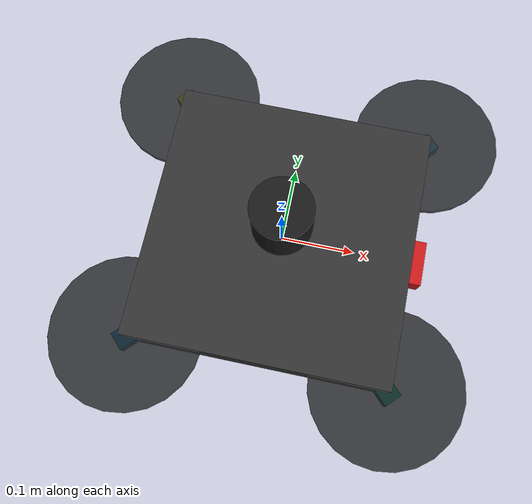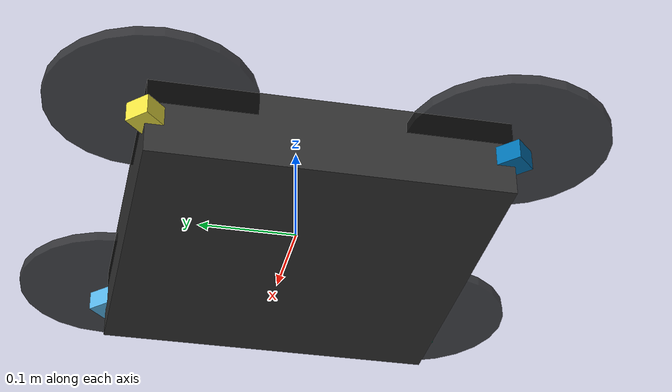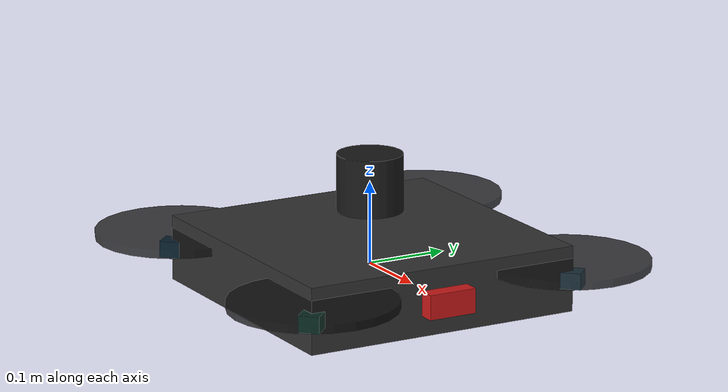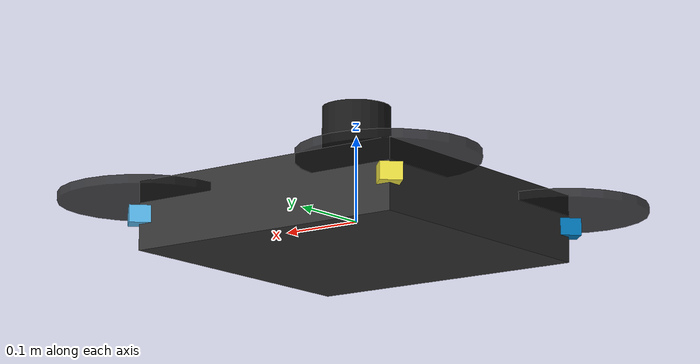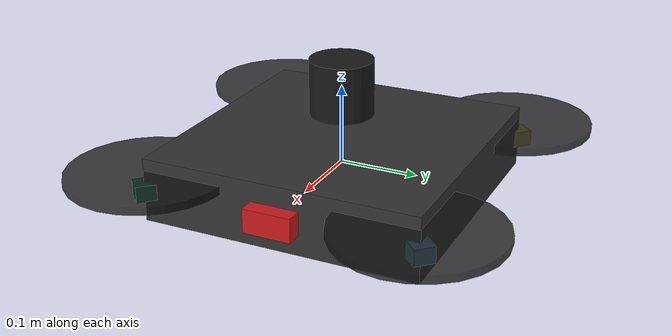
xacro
<?xml version="1.0"?>
<robot name="lidar_drone" xmlns:xacro="http://www.ros.org/wiki/xacro">

  <!-- ========== BASE BODY ========== -->
  <link name="base_link">
    <visual>
      <geometry><box size="0.35 0.35 0.08"/></geometry>
      <material name="dark_grey"><color rgba="0.2 0.2 0.2 1"/></material>
    </visual>
    <collision>
      <geometry><box size="0.35 0.35 0.08"/></geometry>
    </collision>
    <inertial>
      <mass value="1.2"/>
      <inertia ixx="0.015" iyy="0.015" izz="0.025" ixy="0" ixz="0" iyz="0"/>
    </inertial>
  </link>

  <!-- ========== ARMS ========== -->
  <link name="arm_fl">
    <visual><geometry><box size="0.18 0.025 0.02"/></geometry></visual>
    <inertial><mass value="0.05"/>
      <inertia ixx="0.0001" iyy="0.0001" izz="0.0001" ixy="0" ixz="0" iyz="0"/>
    </inertial>
  </link>
  <joint name="arm_fl_joint" type="fixed">
    <parent link="base_link"/><child link="arm_fl"/>
    <origin xyz="0.12 0.12 0.0" rpy="0 0 0.785"/>
  </joint>

  <link name="arm_fr">
    <visual><geometry><box size="0.18 0.025 0.02"/></geometry></visual>
    <inertial><mass value="0.05"/>
      <inertia ixx="0.0001" iyy="0.0001" izz="0.0001" ixy="0" ixz="0" iyz="0"/>
    </inertial>
  </link>
  <joint name="arm_fr_joint" type="fixed">
    <parent link="base_link"/><child link="arm_fr"/>
    <origin xyz="0.12 -0.12 0.0" rpy="0 0 -0.785"/>
  </joint>

  <link name="arm_rl">
    <visual><geometry><box size="0.18 0.025 0.02"/></geometry></visual>
    <inertial><mass value="0.05"/>
      <inertia ixx="0.0001" iyy="0.0001" izz="0.0001" ixy="0" ixz="0" iyz="0"/>
    </inertial>
  </link>
  <joint name="arm_rl_joint" type="fixed">
    <parent link="base_link"/><child link="arm_rl"/>
    <origin xyz="-0.12 0.12 0.0" rpy="0 0 -0.785"/>
  </joint>

  <link name="arm_rr">
    <visual><geometry><box size="0.18 0.025 0.02"/></geometry></visual>
    <inertial><mass value="0.05"/>
      <inertia ixx="0.0001" iyy="0.0001" izz="0.0001" ixy="0" ixz="0" iyz="0"/>
    </inertial>
  </link>
  <joint name="arm_rr_joint" type="fixed">
    <parent link="base_link"/><child link="arm_rr"/>
    <origin xyz="-0.12 -0.12 0.0" rpy="0 0 0.785"/>
  </joint>

  <!-- ========== ROTORS ========== -->
  <link name="rotor_fl">
    <visual><geometry><cylinder radius="0.1" length="0.01"/></geometry>
      <material name="black"><color rgba="0.1 0.1 0.1 0.8"/></material>
    </visual>
    <inertial><mass value="0.025"/>
      <inertia ixx="0.0001" iyy="0.0001" izz="0.0001" ixy="0" ixz="0" iyz="0"/>
    </inertial>
  </link>
  <joint name="rotor_fl_joint" type="fixed">
    <parent link="base_link"/><child link="rotor_fl"/>
    <origin xyz="0.17 0.17 0.02" rpy="0 0 0"/>
  </joint>

  <link name="rotor_fr">
    <visual><geometry><cylinder radius="0.1" length="0.01"/></geometry>
      <material name="black"><color rgba="0.1 0.1 0.1 0.8"/></material>
    </visual>
    <inertial><mass value="0.025"/>
      <inertia ixx="0.0001" iyy="0.0001" izz="0.0001" ixy="0" ixz="0" iyz="0"/>
    </inertial>
  </link>
  <joint name="rotor_fr_joint" type="fixed">
    <parent link="base_link"/><child link="rotor_fr"/>
    <origin xyz="0.17 -0.17 0.02" rpy="0 0 0"/>
  </joint>

  <link name="rotor_rl">
    <visual><geometry><cylinder radius="0.1" length="0.01"/></geometry>
      <material name="black"><color rgba="0.1 0.1 0.1 0.8"/></material>
    </visual>
    <inertial><mass value="0.025"/>
      <inertia ixx="0.0001" iyy="0.0001" izz="0.0001" ixy="0" ixz="0" iyz="0"/>
    </inertial>
  </link>
  <joint name="rotor_rl_joint" type="fixed">
    <parent link="base_link"/><child link="rotor_rl"/>
    <origin xyz="-0.17 0.17 0.02" rpy="0 0 0"/>
  </joint>

  <link name="rotor_rr">
    <visual><geometry><cylinder radius="0.1" length="0.01"/></geometry>
      <material name="black"><color rgba="0.1 0.1 0.1 0.8"/></material>
    </visual>
    <inertial><mass value="0.025"/>
      <inertia ixx="0.0001" iyy="0.0001" izz="0.0001" ixy="0" ixz="0" iyz="0"/>
    </inertial>
  </link>
  <joint name="rotor_rr_joint" type="fixed">
    <parent link="base_link"/><child link="rotor_rr"/>
    <origin xyz="-0.17 -0.17 0.02" rpy="0 0 0"/>
  </joint>

  <!-- ========== VELODYNE VLP-16 ========== -->
  <link name="velodyne_link">
    <visual>
      <geometry><cylinder radius="0.04" length="0.07"/></geometry>
      <material name="black"><color rgba="0.1 0.1 0.1 1"/></material>
    </visual>
    <collision>
      <geometry><cylinder radius="0.04" length="0.07"/></geometry>
    </collision>
    <inertial><mass value="0.08"/>
      <inertia ixx="0.0001" iyy="0.0001" izz="0.0001" ixy="0" ixz="0" iyz="0"/>
    </inertial>
  </link>
  <joint name="velodyne_joint" type="fixed">
    <parent link="base_link"/><child link="velodyne_link"/>
    <origin xyz="0.0 0.0 0.1" rpy="0 0 0"/>
  </joint>

  <!-- ========== FRONT CAMERA ========== -->
  <link name="front_camera_link">
    <visual>
      <geometry><box size="0.03 0.06 0.03"/></geometry>
      <material name="red"><color rgba="0.8 0.1 0.1 1"/></material>
    </visual>
    <inertial><mass value="0.02"/>
      <inertia ixx="0.0001" iyy="0.0001" izz="0.0001" ixy="0" ixz="0" iyz="0"/>
    </inertial>
  </link>
  <joint name="front_camera_joint" type="fixed">
    <parent link="base_link"/><child link="front_camera_link"/>
    <origin xyz="0.18 0.0 0.0" rpy="0 0 0"/>
  </joint>

  <!-- ========== GAZEBO: Flight Plugin ========== -->
  <gazebo>
    <plugin name="lidar_drone_plugin" filename="libgazebo_ros_planar_move.so">
      <ros>
        <namespace>/lidar_drone</namespace>
        <remapping>cmd_vel:=cmd_vel</remapping>
        <remapping>odom:=odom</remapping>
      </ros>
      <publish_rate>10</publish_rate>
    </plugin>
  </gazebo>

  <!-- ========== GAZEBO: Velodyne VLP-16 ========== -->
  <gazebo reference="velodyne_link">
    <sensor name="velodyne" type="ray">
      <always_on>true</always_on>
      <visualize>false</visualize>
      <update_rate>10</update_rate>
      <ray>
        <scan>
          <horizontal>
            <samples>360</samples>
            <resolution>1</resolution>
            <min_angle>-3.14159</min_angle>
            <max_angle>3.14159</max_angle>
          </horizontal>
          <vertical>
            <samples>16</samples>
            <resolution>1</resolution>
            <min_angle>-0.2618</min_angle>
            <max_angle>0.2618</max_angle>
          </vertical>
        </scan>
        <range>
          <min>0.1</min>
          <max>100.0</max>
          <resolution>0.01</resolution>
        </range>
        <noise>
          <type>gaussian</type>
          <mean>0.0</mean>
          <stddev>0.01</stddev>
        </noise>
      </ray>
      <plugin name="velodyne_plugin" filename="libgazebo_ros_ray_sensor.so">
        <ros>
          <namespace>/lidar_drone</namespace>
          <remapping>~/out:=lidar/points</remapping>
        </ros>
        <output_type>sensor_msgs/PointCloud2</output_type>
        <frame_name>velodyne_link</frame_name>
      </plugin>
    </sensor>
  </gazebo>

  <!-- ========== GAZEBO: Front Camera ========== -->
  <gazebo reference="front_camera_link">
    <sensor name="front_camera" type="camera">
      <always_on>true</always_on>
      <visualize>true</visualize>
      <update_rate>30</update_rate>
      <camera>
        <horizontal_fov>1.3962634</horizontal_fov>
        <image>
          <width>640</width>
          <height>480</height>
          <format>R8G8B8</format>
        </image>
        <clip>
          <near>0.1</near>
          <far>100</far>
        </clip>
      </camera>
      <plugin name="front_camera_plugin" filename="libgazebo_ros_camera.so">
        <ros>
          <namespace>/lidar_drone</namespace>
          <remapping>image_raw:=front_camera/image_raw</remapping>
          <remapping>camera_info:=front_camera/camera_info</remapping>
        </ros>
        <frame_name>front_camera_link</frame_name>
      </plugin>
    </sensor>
  </gazebo>

</robot>
